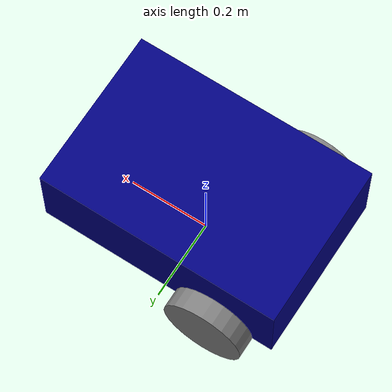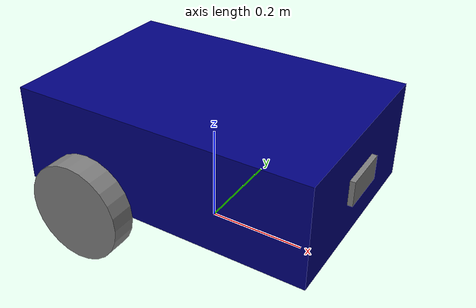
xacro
<?xml version="1.0"?>
<robot name="MyRobot" xmlns:xacro="http://www.ros.org/wiki/xacro">

    <xacro:include filename="common_properties.xacro" />
    <xacro:include filename="mobile_base.xacro" />
    <xacro:include filename="mobile_base_gazebo.xacro" />

    <xacro:include filename="camera.xacro" />
    <xacro:include filename="lidar.xacro" />

</robot>

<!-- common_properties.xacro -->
<robot xmlns:xacro="http://www.ros.org/wiki/xacro">
    <material name="green">
        <color rgba="0.5 0 0 1" />
    </material>

    <material name="blue">
        <color rgba="0 0 0.5 1" />
    </material>

    <material name="grey">
        <color rgba="0.5 0.5 0.5 1" />
    </material>

    <material name="orange">
        <color rgba="1.0 0.3 0 1" />
    </material>

    <material name="yellow">
        <color rgba="1.0 1.0 0 1" />
    </material>

    <xacro:macro name="box_inertia" params="m l w h xyz rpy" >
        <inertial>
            <origin xyz="${xyz}" rpy="${rpy}" />
            <mass value="${m}" />
            <inertia ixx="${(m/12) * (h*h + l*l)}" ixy="0" ixz="0"
                     iyy="${(m/12) * (w*w + h*h)}" iyz="0"
                     izz="${(m/12) * (w*w + l*l)}" />
        </inertial>
    </xacro:macro>

    <xacro:macro name="cylinder_inertia" params="m r h xyz rpy" >
        <inertial>
            <origin xyz="${xyz}" rpy="${rpy}" />
            <mass value="${m}" />
            <inertia ixx="${(m/12) * (3*(r*r) + h*h)}" ixy="0" ixz="0"
                     iyy="${(m/12) * (3*(r*r) + h*h)}" iyz="0"
                     izz="${(m/2) * (r*r)}" />
        </inertial>
    </xacro:macro>

    <xacro:macro name="sphere_inertia" params="m r xyz rpy" >
        <inertial>
            <origin xyz="${xyz}" rpy="${rpy}" />
            <mass value="${m}" />
            <inertia ixx="${(2/5) * m * (r*r)}" ixy="0" ixz="0"
                     iyy="${(2/5) * m * (r*r)}" iyz="0"
                     izz="${(2/5) * m * (r*r)}" />
        </inertial>
    </xacro:macro>

</robot>

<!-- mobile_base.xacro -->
<robot xmlns:xacro="http://www.ros.org/wiki/xacro">

    <xacro:property name="base_length" value="0.6" />
    <xacro:property name="base_width" value="0.4" />
    <xacro:property name="base_height" value="0.2" />
    <xacro:property name="wheel_radius" value="0.1" />
    <xacro:property name="wheel_height" value="0.05" />

    <link name="base_footprint"/>

    <link name="base_link">
        <visual>
            <geometry>
                <box size="${base_length} ${base_width} ${base_height}" />
            </geometry>
            <origin xyz="0 0 ${base_height/2.0}" rpy="0 0 0" />
            <material name="blue" />
        </visual>
        <collision>
            <geometry>
                <box size="${base_length} ${base_width} ${base_height}" />
            </geometry>
            <origin xyz="0 0 ${base_height/2.0}" rpy="0 0 0" />
        </collision>
        <xacro:box_inertia m="5.0" l="${4*base_length}" w="${4*base_width}" h="${4*base_height}"
                           xyz="0 0 ${base_height/2.0}" rpy="0 0 0" />
    </link>

    <xacro:macro name="wheel_link" params="prefix">
        <link name="${prefix}_wheel_link">
            <visual>
                <geometry>
                    <cylinder radius="${wheel_radius}" length="${wheel_height}"/>
                </geometry>
                <origin xyz="0 0 0" rpy="${pi/2.0} 0 0"/>
                <material name="grey"/>
            </visual>
            <collision>
                <geometry>
                    <cylinder radius="${wheel_radius}" length="${wheel_height}"/>
                </geometry>
                <origin xyz="0 0 0" rpy="${pi/2.0} 0 0"/>
            </collision>
            <xacro:cylinder_inertia m="1.0" r="${4*wheel_radius}" h="${4*wheel_height}"
                                 xyz="0 0 0" rpy="${pi/2.0} 0 0" />
        </link>
    </xacro:macro>

    <xacro:wheel_link prefix="right" />
    <xacro:wheel_link prefix="left" />

    <link name="caster_wheel_link">
        <visual>
            <geometry>
                <sphere radius="${wheel_radius/2.0}"/>
            </geometry>
            <origin xyz="0 0 0" rpy="0 0 0"/>
            <material name="grey"/>
        </visual>
        <collision>
            <geometry>
                <sphere radius="${wheel_radius/2.0}"/>
            </geometry>
            <origin xyz="0 0 0" rpy="0 0 0"/>
        </collision>
        <xacro:sphere_inertia m="0.5" r="${3*wheel_radius/2.0}"
                                    xyz="0 0 0" rpy="0 0 0" />
    </link>

    <joint name="base_joint" type="fixed">
        <parent link="base_footprint" />
        <child link="base_link" />
        <origin xyz="0 0 ${wheel_radius}" rpy="0 0 0" />
    </joint>

    <joint name="base_right_wheel_joint" type="continuous">
        <parent link="base_link" />
        <child link="right_wheel_link" />
        <origin xyz="${-(base_length)/4.0} ${-(base_width + wheel_height)/2.0} 0" rpy="0 0 0" />
        <axis xyz="0 1 0"/>
    </joint>

    <joint name="base_left_wheel_joint" type="continuous">
        <parent link="base_link" />
        <child link="left_wheel_link" />
        <origin xyz="${-(base_length)/4.0} ${(base_width + wheel_height)/2.0} 0" rpy="0 0 0" />
        <axis xyz="0 1 0" />
    </joint>

    <joint name="base_caster_wheel_joint" type="fixed">
        <parent link="base_link" />
        <child link="caster_wheel_link" />
        <origin xyz="${base_length/3.0} 0 ${-wheel_radius/2.0}" rpy="0 0 0" />
    </joint>
</robot>

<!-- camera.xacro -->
<robot xmlns:xacro="http://www.ros.org/wiki/xacro">

    <xacro:property name="camera_length" value="0.01" />
    <xacro:property name="camera_width" value="0.1" />
    <xacro:property name="camera_height" value="0.05" />

    <link name="camera_link">
        <visual>
            <geometry>
                <box size="${camera_length} ${camera_width} ${camera_height}" />
            </geometry>
            <material name="grey" />
        </visual>
        <collision>
            <geometry>
                <box size="${camera_length} ${camera_width} ${camera_height}" />
            </geometry>
        </collision>
        <xacro:box_inertia m="0.1" l="${camera_length}" w="${camera_width}" h="${camera_height}"
                           xyz="0 0 0" rpy="0 0 0" />
    </link>

    <joint name="base_camera_joint" type="fixed">
        <parent link="base_link" />
        <child link="camera_link" />
        <origin xyz="${(camera_length + base_length) / 2.0} 0 ${base_height / 2.0}" rpy="0 0 0" />
    </joint>

    <gazebo reference="camera_link">
        <material>Gazebo/Grey</material>
        <sensor name="camera_sensor" type="camera">
            <pose>0 0 0 0 0 0</pose>
            <visualize>true</visualize>
            <update_rate>10.0</update_rate>
            <camera>
                <horizontal_fov>1.3962634</horizontal_fov>
                <image>
                    <width>640</width>
                    <height>480</height>
                    <format>R8G8B8</format>
                </image>
                <clip>
                    <near>0.05</near>
                    <far>50.0</far>
                </clip>
            </camera>
            <plugin name="camera_controller" filename="libgazebo_ros_camera.so">
                 <frame_name>camera_link</frame_name>
                 <camera_name>camera</camera_name>
                 <image_topic_name>image_raw</image_topic_name>
                 <camera_info_topic_name>camera_info</camera_info_topic_name>
            </plugin>
        </sensor>
    </gazebo>

</robot>

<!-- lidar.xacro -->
<robot xmlns:xacro="http://www.ros.org/wiki/xacro">

    <xacro:property name="lidar_radius" value="0.055" />
    <xacro:property name="lidar_height" value="0.06" />

    <link name="lidar_link">
        <visual>
            <geometry>
                <cylinder radius="${lidar_radius}" length="${lidar_height}" />
            </geometry>
            <origin xyz="0 0 0" rpy="0 0 0" />
            <material name="orange" />
        </visual>
        <collision>
            <geometry>
                <cylinder radius="${lidar_radius}" length="${lidar_height}" />
            </geometry>
            <origin xyz="0 0 0" rpy="0 0 0" />
        </collision>
        <xacro:cylinder_inertia
            m="0.25"
            r="${lidar_radius}"
            h="${lidar_height}"
            xyz="0 0 0"
            rpy="0 0 0" />
    </link>

    <joint name="base_lidar_joint" type="fixed">
        <parent link="base_link" />
        <child link="lidar_link" />
        <origin xyz="${base_length / 2.0 - lidar_radius} 0 0.14" rpy="0 0 0" />
    </joint>

    <gazebo reference="lidar_link">
        <material>Gazebo/Orange</material>
        <sensor name="lidar_sensor" type="ray">
            <pose>0 0 0 0 0 0</pose>
            <visualize>true</visualize>
            <update_rate>15.0</update_rate>
            <ray>
                <scan>
                    <horizontal>
                        <samples>720</samples>
                        <resolution>1</resolution>
                        <min_angle>-3.14159</min_angle>
                        <max_angle>3.14159</max_angle>
                    </horizontal>
                </scan>
                <range>
                    <min>0.12</min>
                    <max>12.0</max>
                    <resolution>0.02</resolution>
                </range>
                <noise>
                    <type>gaussian</type>
                    <mean>0.0</mean>
                    <stddev>0.01</stddev>
                </noise>
            </ray>
            <plugin name="gazebo_ros_lidar" filename="libgazebo_ros_ray_sensor.so">
                <ros>
                    <remapping>~/out:=/scan</remapping>
                </ros>
                <output_type>sensor_msgs/LaserScan</output_type>
                <frame_name>lidar_link</frame_name>
            </plugin>
        </sensor>
    </gazebo>

</robot>
